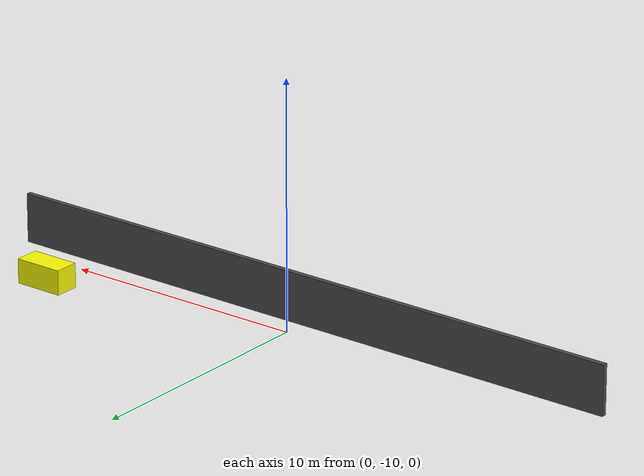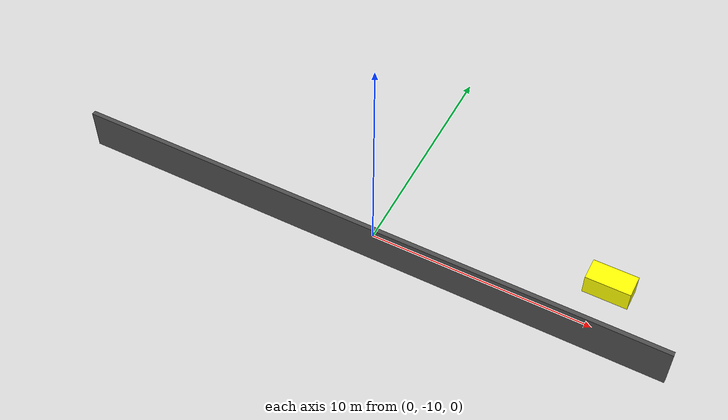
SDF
<sdf version="1.7">
 <world name="empty">
  <include><uri>https://fuel.gazebosim.org/1.0/OpenRobotics/models/Sun</uri></include>
  <model name="wall_south">
   <static>true</static>
   <pose>0 -11 1 0 0 0</pose>
   <link name="link">
    <collision name="collision"><geometry><box><size>27 0.2 2</size></box></geometry></collision>
    <visual name="visual">
     <geometry><box><size>27 0.2 2</size></box></geometry>
     <material><ambient>0.3 0.3 0.3 1</ambient><diffuse>0.3 0.3 0.3 1</diffuse></material>
    </visual>
   </link>
  </model>
  <model name="shelf_yellow">
   <static>true</static>
   <pose>10 -8 0.5 0 0 0</pose>
   <link name="link">
    <collision name="collision"><geometry><box><size>2 1 1</size></box></geometry></collision>
    <visual name="visual">
     <geometry><box><size>2 1 1</size></box></geometry>
     <material><ambient>1 1 0 1</ambient><diffuse>1 1 0 1</diffuse></material>
    </visual>
   </link>
  </model>
 </world>
</sdf>
